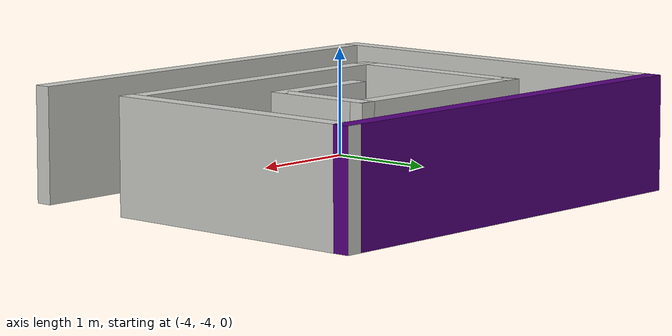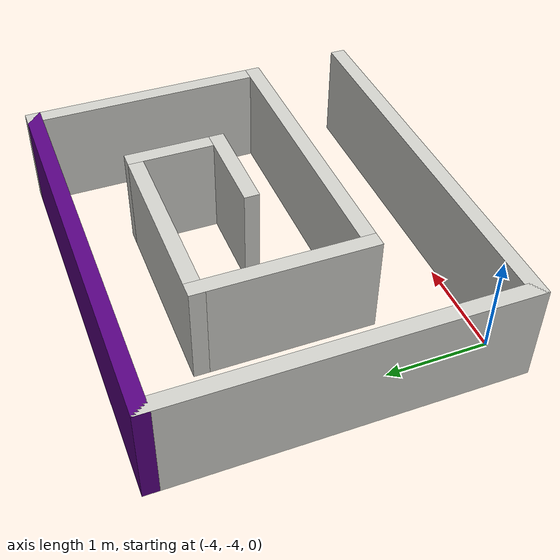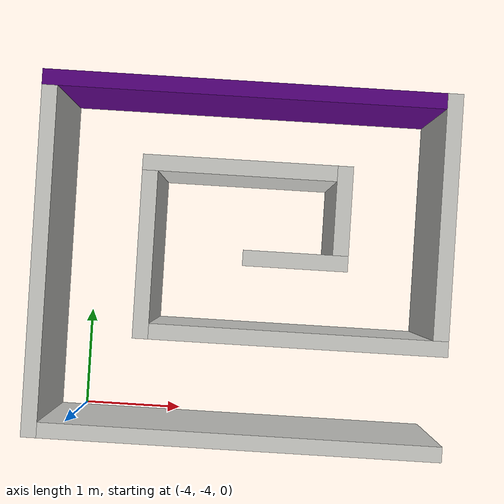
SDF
<?xml version='1.0'?>
<sdf version='1.7'>
  <model name='group1_custom.world'>
    <pose>-2.2075 -2.0875 0 0 -0 0</pose>
    <link name='Wall_22'>
      <collision name='Wall_22_Collision'>
        <geometry>
          <box>
            <size>1 0.15 1</size>
          </box>
        </geometry>
        <pose>0 0 0.5 0 -0 0</pose>
      </collision>
      <visual name='Wall_22_Visual'>
        <pose>0 0 0.5 0 -0 0</pose>
        <geometry>
          <box>
            <size>1 0.15 1</size>
          </box>
        </geometry>
        <material>
          <script>
            <uri>file://media/materials/scripts/gazebo.material</uri>
            <name>Gazebo/CeilingTiled</name>
          </script>
          <ambient>0.333333 0 0.498039 1</ambient>
        </material>
        <meta>
          <layer>0</layer>
        </meta>
      </visual>
      <pose>0.2925 -0.2625 0 0 -0 0</pose>
    </link>
    <link name='Wall_23'>
      <collision name='Wall_23_Collision'>
        <geometry>
          <box>
            <size>1 0.15 1</size>
          </box>
        </geometry>
        <pose>0 0 0.5 0 -0 0</pose>
      </collision>
      <visual name='Wall_23_Visual'>
        <pose>0 0 0.5 0 -0 0</pose>
        <geometry>
          <box>
            <size>1 0.15 1</size>
          </box>
        </geometry>
        <material>
          <script>
            <uri>file://media/materials/scripts/gazebo.material</uri>
            <name>Gazebo/CeilingTiled</name>
          </script>
          <ambient>0.333333 0 0.498039 1</ambient>
        </material>
        <meta>
          <layer>0</layer>
        </meta>
      </visual>
      <pose>0.7175 0.1625 0 0 -0 1.5708</pose>
    </link>
    <link name='Wall_24'>
      <collision name='Wall_24_Collision'>
        <geometry>
          <box>
            <size>2 0.15 1</size>
          </box>
        </geometry>
        <pose>0 0 0.5 0 -0 0</pose>
      </collision>
      <visual name='Wall_24_Visual'>
        <pose>0 0 0.5 0 -0 0</pose>
        <geometry>
          <box>
            <size>2 0.15 1</size>
          </box>
        </geometry>
        <material>
          <script>
            <uri>file://media/materials/scripts/gazebo.material</uri>
            <name>Gazebo/CeilingTiled</name>
          </script>
          <ambient>0.333333 0 0.498039 1</ambient>
        </material>
        <meta>
          <layer>0</layer>
        </meta>
      </visual>
      <pose>-0.2075 0.5875 0 0 -0 3.14159</pose>
    </link>
    <link name='Wall_25'>
      <collision name='Wall_25_Collision'>
        <geometry>
          <box>
            <size>1.75 0.15 1</size>
          </box>
        </geometry>
        <pose>0 0 0.5 0 -0 0</pose>
      </collision>
      <visual name='Wall_25_Visual'>
        <pose>0 0 0.5 0 -0 0</pose>
        <geometry>
          <box>
            <size>1.75 0.15 1</size>
          </box>
        </geometry>
        <material>
          <script>
            <uri>file://media/materials/scripts/gazebo.material</uri>
            <name>Gazebo/CeilingTiled</name>
          </script>
          <ambient>0.333333 0 0.498039 1</ambient>
        </material>
        <meta>
          <layer>0</layer>
        </meta>
      </visual>
      <pose>-1.1325 -0.2125 0 0 -0 -1.5708</pose>
    </link>
    <link name='Wall_26'>
      <collision name='Wall_26_Collision'>
        <geometry>
          <box>
            <size>3 0.15 1</size>
          </box>
        </geometry>
        <pose>0 0 0.5 0 -0 0</pose>
      </collision>
      <visual name='Wall_26_Visual'>
        <pose>0 0 0.5 0 -0 0</pose>
        <geometry>
          <box>
            <size>3 0.15 1</size>
          </box>
        </geometry>
        <material>
          <script>
            <uri>file://media/materials/scripts/gazebo.material</uri>
            <name>Gazebo/CeilingTiled</name>
          </script>
          <ambient>0.333333 0 0.498039 1</ambient>
        </material>
        <meta>
          <layer>0</layer>
        </meta>
      </visual>
      <pose>0.2925 -1.0125 0 0 -0 0</pose>
    </link>
    <link name='Wall_27'>
      <collision name='Wall_27_Collision'>
        <geometry>
          <box>
            <size>2.5 0.15 1</size>
          </box>
        </geometry>
        <pose>0 0 0.5 0 -0 0</pose>
      </collision>
      <visual name='Wall_27_Visual'>
        <pose>0 0 0.5 0 -0 0</pose>
        <geometry>
          <box>
            <size>2.5 0.15 1</size>
          </box>
        </geometry>
        <material>
          <script>
            <uri>file://media/materials/scripts/gazebo.material</uri>
            <name>Gazebo/CeilingTiled</name>
          </script>
          <ambient>0.333333 0 0.498039 1</ambient>
        </material>
        <meta>
          <layer>0</layer>
        </meta>
      </visual>
      <pose>1.7175 0.1625 0 0 -0 1.5708</pose>
    </link>
    <link name='Wall_28'>
      <collision name='Wall_28_Collision'>
        <geometry>
          <box>
            <size>4 0.15 1</size>
          </box>
        </geometry>
        <pose>0 0 0.5 0 -0 0</pose>
      </collision>
      <visual name='Wall_28_Visual'>
        <pose>0 0 0.5 0 -0 0</pose>
        <geometry>
          <box>
            <size>4 0.15 1</size>
          </box>
        </geometry>
        <material>
          <script>
            <uri>file://media/materials/scripts/gazebo.material</uri>
            <name>Gazebo/Grey</name>
          </script>
          <ambient>0.333333 0 0.498039 1</ambient>
        </material>
        <meta>
          <layer>0</layer>
        </meta>
      </visual>
      <pose>-0.2075 1.3375 0 0 -0 3.14159</pose>
    </link>
    <link name='Wall_29'>
      <collision name='Wall_29_Collision'>
        <geometry>
          <box>
            <size>3.5 0.15 1</size>
          </box>
        </geometry>
        <pose>0 0 0.5 0 -0 0</pose>
      </collision>
      <visual name='Wall_29_Visual'>
        <pose>0 0 0.5 0 -0 0</pose>
        <geometry>
          <box>
            <size>3.5 0.15 1</size>
          </box>
        </geometry>
        <material>
          <script>
            <uri>file://media/materials/scripts/gazebo.material</uri>
            <name>Gazebo/CeilingTiled</name>
          </script>
          <ambient>0.333333 0 0.498039 1</ambient>
        </material>
        <meta>
          <layer>0</layer>
        </meta>
      </visual>
      <pose>-2.1325 -0.3375 0 0 -0 -1.5708</pose>
    </link>
    <link name='Wall_30'>
      <collision name='Wall_30_Collision'>
        <geometry>
          <box>
            <size>4 0.15 1</size>
          </box>
        </geometry>
        <pose>0 0 0.5 0 -0 0</pose>
      </collision>
      <visual name='Wall_30_Visual'>
        <pose>0 0 0.5 0 -0 0</pose>
        <geometry>
          <box>
            <size>4 0.15 1</size>
          </box>
        </geometry>
        <material>
          <script>
            <uri>file://media/materials/scripts/gazebo.material</uri>
            <name>Gazebo/CeilingTiled</name>
          </script>
          <ambient>0.333333 0 0.498039 1</ambient>
        </material>
        <meta>
          <layer>0</layer>
        </meta>
      </visual>
      <pose>-0.2075 -2.0125 0 0 -0 0</pose>
    </link>
    <static>1</static>
  </model>
</sdf>
